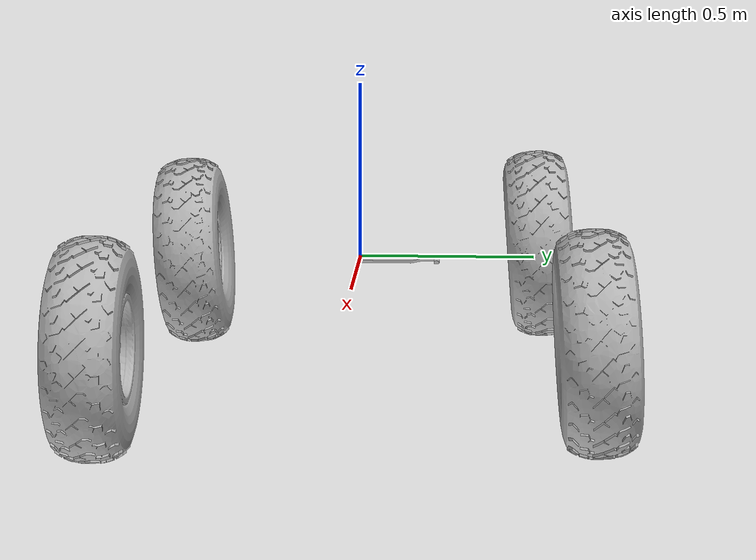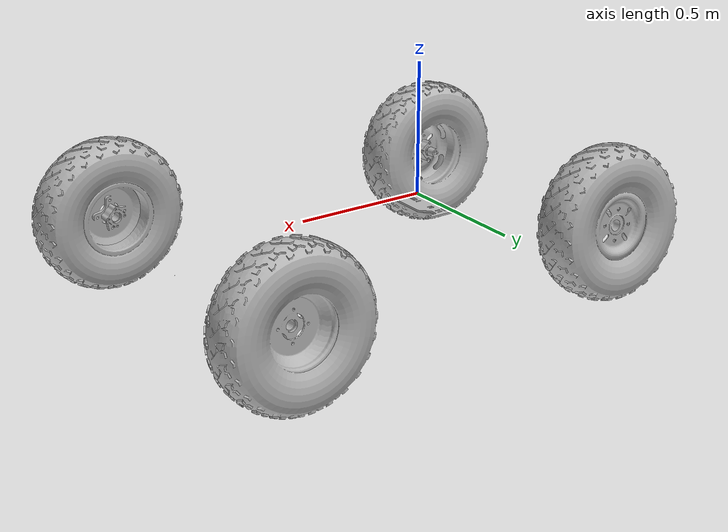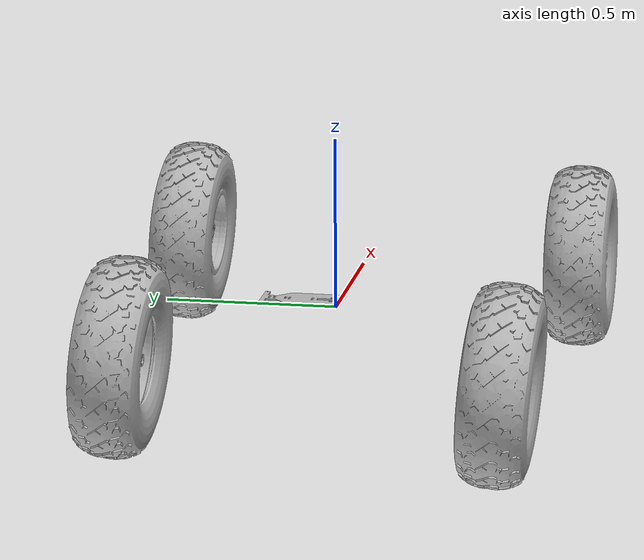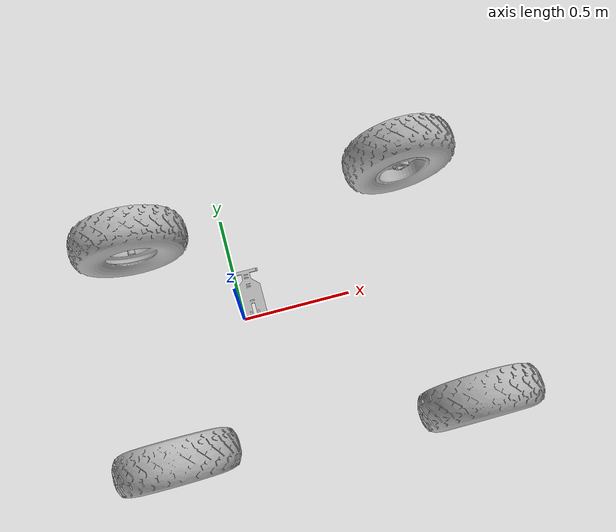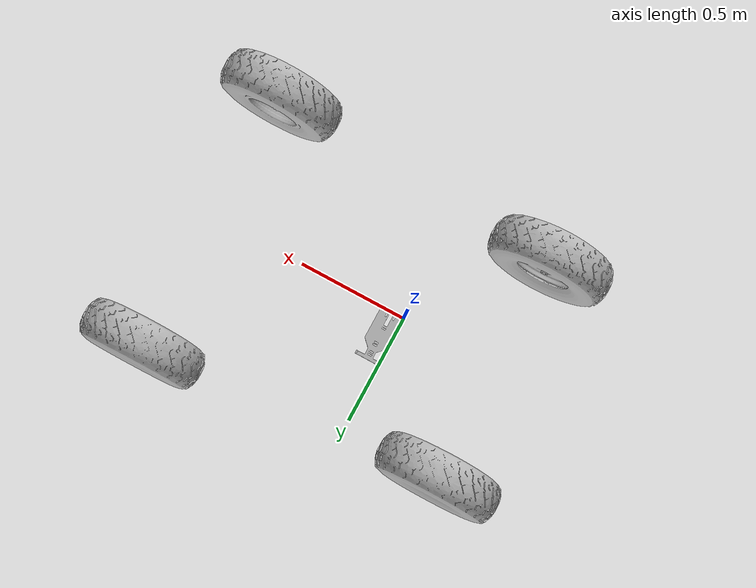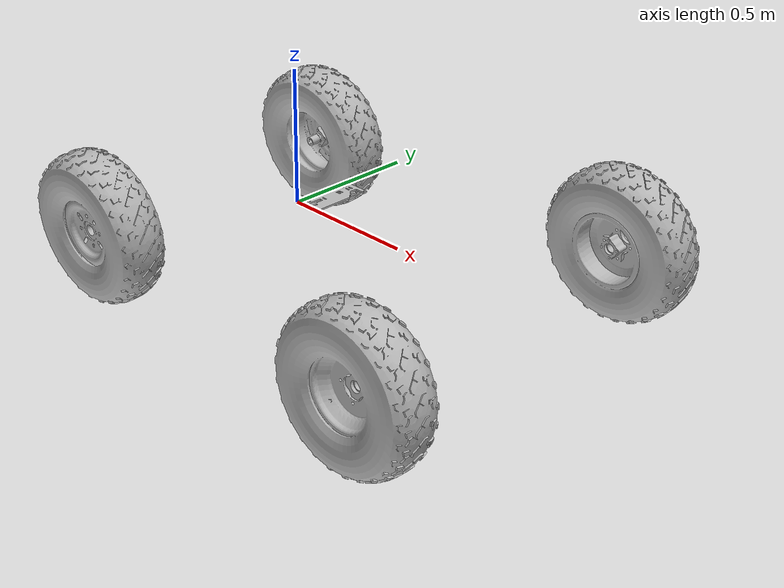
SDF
<sdf version='1.7'>
  <model name='vehicle'>
    <link name='base_link'>
      <inertial>
        <pose>0.36874 -0.004744 0.26806 0 -0 0</pose>
        <mass>6.694</mass>
        <inertia>
          <ixx>0.11521</ixx>
          <ixy>0.0013455</ixy>
          <ixz>0.0041749</ixz>
          <iyy>0.14404</iyy>
          <iyz>0.0027363</iyz>
          <izz>0.14178</izz>
        </inertia>
      </inertial>
      <collision name='base_link_collision'>
        <pose>0 0 0 0 -0 0</pose>
        <geometry>
          <mesh>
            <scale>1 1 1</scale>
            <uri>model://vehicle/meshes/base_link.STL</uri>
          </mesh>
        </geometry>
      </collision>
      <visual name='base_link_visual'>
        <pose>0 0 0 0 -0 0</pose>
        <geometry>
          <mesh>
            <scale>1 1 1</scale>
            <uri>model://vehicle/meshes/base_link.STL</uri>
          </mesh>
        </geometry>
      </visual>
    </link>
    <joint name='JTBKL' type='revolute'>
      <pose relative_to='base_link'>-0.4541 0.5747 -0.037943 0 -0 0.004044</pose>
      <parent>base_link</parent>
      <child>BKL</child>
      <axis>
        <xyz>4.3e-05 0.99728 0.073655</xyz>
        <limit>
          <lower>0</lower>
          <upper>0</upper>
          <effort>10</effort>
          <velocity>10</velocity>
        </limit>
        <dynamics>
          <damping>0.1</damping>
          <friction>0.1</friction>
          <spring_reference>0</spring_reference>
          <spring_stiffness>0</spring_stiffness>
        </dynamics>
      </axis>
    </joint>
    <link name='BKL'>
      <pose relative_to='JTBKL'>0 0 0 0 -0 0</pose>
      <inertial>
        <pose>4.9e-05 -0.043014 -0.003259 0 -0 0</pose>
        <mass>7.1252</mass>
        <inertia>
          <ixx>0.18572</ixx>
          <ixy>1.2265e-08</ixy>
          <ixz>-6.0923e-08</ixz>
          <iyy>0.319</iyy>
          <iyz>0.0098429</iyz>
          <izz>0.18645</izz>
        </inertia>
      </inertial>
      <collision name='BKL_collision'>
        <pose>0 0 0 0 -0 0</pose>
        <geometry>
          <mesh>
            <scale>1 1 1</scale>
            <uri>model://vehicle/meshes/BKL.STL</uri>
          </mesh>
        </geometry>
      </collision>
      <visual name='BKL_visual'>
        <pose>0 0 0 0 -0 0</pose>
        <geometry>
          <mesh>
            <scale>1 1 1</scale>
            <uri>model://vehicle/meshes/BKL.STL</uri>
          </mesh>
        </geometry>
      </visual>
    </link>
    <joint name='JTBKR' type='revolute'>
      <pose relative_to='base_link'>-0.44539 -0.58457 -0.075276 0 -0 0.004044</pose>
      <parent>base_link</parent>
      <child>BKR</child>
      <axis>
        <xyz>-4.3e-05 -0.99728 -0.073655</xyz>
        <limit>
          <lower>0</lower>
          <upper>0</upper>
          <effort>10</effort>
          <velocity>10</velocity>
        </limit>
        <dynamics>
          <damping>0.1</damping>
          <friction>0.1</friction>
          <spring_reference>0</spring_reference>
          <spring_stiffness>0</spring_stiffness>
        </dynamics>
      </axis>
    </joint>
    <link name='BKR'>
      <pose relative_to='JTBKR'>0 0 0 0 -0 0</pose>
      <inertial>
        <pose>-9.3e-05 0.043018 0.003199 0 -0 0</pose>
        <mass>7.1252</mass>
        <inertia>
          <ixx>0.18572</ixx>
          <ixy>7.2787e-09</ixy>
          <ixz>-5.8422e-08</ixz>
          <iyy>0.319</iyy>
          <iyz>0.0098429</iyz>
          <izz>0.18645</izz>
        </inertia>
      </inertial>
      <collision name='BKR_collision'>
        <pose>0 0 0 0 -0 0</pose>
        <geometry>
          <mesh>
            <scale>1 1 1</scale>
            <uri>model://vehicle/meshes/BKR.STL</uri>
          </mesh>
        </geometry>
      </collision>
      <visual name='BKR_visual'>
        <pose>0 0 0 0 -0 0</pose>
        <geometry>
          <mesh>
            <scale>1 1 1</scale>
            <uri>model://vehicle/meshes/BKR.STL</uri>
          </mesh>
        </geometry>
      </visual>
    </link>
    <joint name='JTFRL' type='revolute'>
      <pose relative_to='base_link'>0.94525 0.63885 -0.035217 0.060377 -0.15703 -0</pose>
      <parent>base_link</parent>
      <child>FRL</child>
      <axis>
        <xyz>-3.5e-05 -1 0</xyz>
        <limit>
          <lower>0</lower>
          <upper>0</upper>
          <effort>10</effort>
          <velocity>10</velocity>
        </limit>
        <dynamics>
          <spring_reference>0</spring_reference>
          <spring_stiffness>0</spring_stiffness>
        </dynamics>
      </axis>
    </joint>
    <link name='FRL'>
      <pose relative_to='JTFRL'>0 0 0 0 -0 0</pose>
      <inertial>
        <pose>0.005114 -0.025627 -0.003576 0 -0 0</pose>
        <mass>5.8353</mass>
        <inertia>
          <ixx>0.16391</ixx>
          <ixy>0.00010536</ixy>
          <ixz>3.7108e-05</ixz>
          <iyy>0.28026</iyy>
          <iyz>-2.3603e-05</iyz>
          <izz>0.16437</izz>
        </inertia>
      </inertial>
      <collision name='FRL_collision'>
        <pose>0 0 0 0 -0 0</pose>
        <geometry>
          <mesh>
            <scale>1 1 1</scale>
            <uri>model://vehicle/meshes/FRL.STL</uri>
          </mesh>
        </geometry>
      </collision>
      <visual name='FRL_visual'>
        <pose>0 0 0 0 -0 0</pose>
        <geometry>
          <mesh>
            <scale>1 1 1</scale>
            <uri>model://vehicle/meshes/FRL.STL</uri>
          </mesh>
        </geometry>
      </visual>
    </link>
    <joint name='JTFRR' type='revolute'>
      <pose relative_to='base_link'>0.94782 -0.62743 -0.066342 0 -0.15703 0</pose>
      <parent>base_link</parent>
      <child>FRR</child>
      <axis>
        <xyz>0 1 0</xyz>
        <limit>
          <lower>0</lower>
          <upper>0</upper>
          <effort>10</effort>
          <velocity>10</velocity>
        </limit>
        <dynamics>
          <spring_reference>0</spring_reference>
          <spring_stiffness>0</spring_stiffness>
        </dynamics>
      </axis>
    </joint>
    <link name='FRR'>
      <pose relative_to='JTFRR'>0 0 0 0 -0 0</pose>
      <inertial>
        <pose>0.002094 0.025627 -0.005879 0 -0 0</pose>
        <mass>5.8353</mass>
        <inertia>
          <ixx>0.16436</ixx>
          <ixy>5.1439e-06</ixy>
          <ixz>-8.652e-05</ixz>
          <iyy>0.28026</iyy>
          <iyz>0.00010784</iyz>
          <izz>0.16392</izz>
        </inertia>
      </inertial>
      <collision name='FRR_collision'>
        <pose>0 0 0 0 -0 0</pose>
        <geometry>
          <mesh>
            <scale>1 1 1</scale>
            <uri>model://vehicle/meshes/FRR.STL</uri>
          </mesh>
        </geometry>
      </collision>
      <visual name='FRR_visual'>
        <pose>0 0 0 0 -0 0</pose>
        <geometry>
          <mesh>
            <scale>1 1 1</scale>
            <uri>model://vehicle/meshes/FRR.STL</uri>
          </mesh>
        </geometry>
      </visual>
    </link>
    <static>0</static>
    <plugin name='ackermann_steering' filename='libgazebo_ros_steering_control.so'>
      <ros2_control>
        <joint name='JTFRR'/>
        <joint name='JTFRL'/>
        <joint name='JTBKL'/>
        <joint name='JTBKR'/>
        <command_topic>/cmd_ackermann</command_topic>
      </ros2_control>
    </plugin>
  </model>
</sdf>
